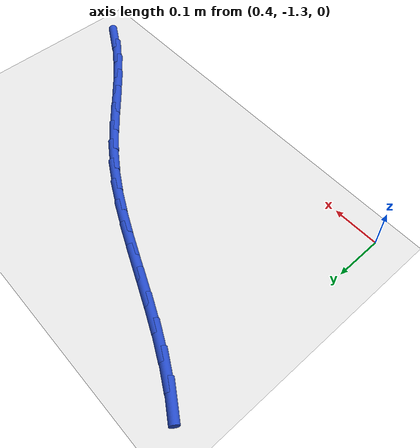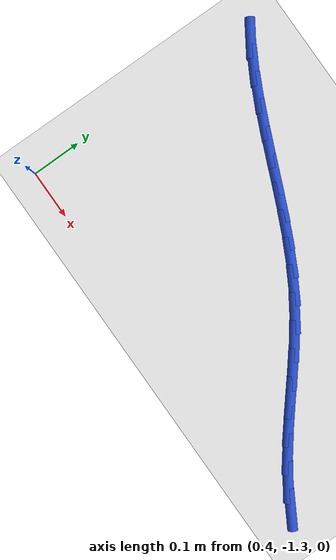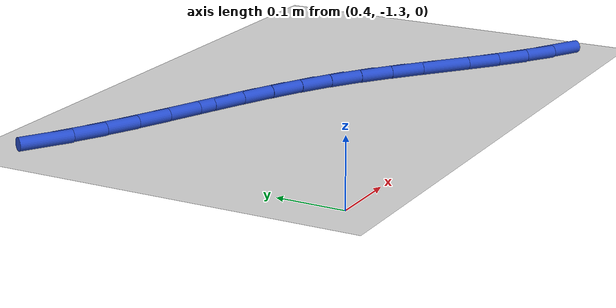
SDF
<sdf version="1.6">
 <world name="default">
  <model name="ground_plane">
   <static>1</static>
   <link name="link">
    <collision name="collision">
     <geometry><plane><normal>0 0 1</normal><size>100 100</size></plane></geometry>
     <surface><friction><ode><mu>100</mu><mu2>50</mu2></ode></friction></surface>
    </collision>
    <visual name="visual">
     <cast_shadows>0</cast_shadows>
     <geometry><plane><normal>0 0 1</normal><size>100 100</size></plane></geometry>
     <material>
      <script><uri>file://media/materials/scripts/gazebo.material</uri><name>Gazebo/WhiteGlow</name></script>
     </material>
    </visual>
   </link>
  </model>
  <model name="line">
   <link name="link_105">
    <pose>1.2019997121312904 -1.2704965448211438 0.01 0 1.57 -0.52057335708892</pose>
    <collision name="collision">
     <geometry><cylinder><radius>0.01</radius><length>0.08</length></cylinder></geometry>
    </collision>
    <visual name="visual">
     <material>
      <script><name>Gazebo/Blue</name><uri>file://media/materials/scripts/gazebo.material</uri></script>
     </material>
     <geometry><cylinder><radius>0.01</radius><length>0.08</length></cylinder></geometry>
    </visual>
   </link>
   <link name="link_106">
    <pose>1.156565427537016 -1.2444480063284054 0.01 0 1.57 -0.5995848412387178</pose>
    <collision name="collision">
     <geometry><cylinder><radius>0.01</radius><length>0.08</length></cylinder></geometry>
    </collision>
    <visual name="visual">
     <material>
      <script><name>Gazebo/Blue</name><uri>file://media/materials/scripts/gazebo.material</uri></script>
     </material>
     <geometry><cylinder><radius>0.01</radius><length>0.08</length></cylinder></geometry>
    </visual>
   </link>
   <link name="link_107">
    <pose>1.1131077206313988 -1.2147434681204823 0.01 0 1.57 -0.6539050554908377</pose>
    <collision name="collision">
     <geometry><cylinder><radius>0.01</radius><length>0.08</length></cylinder></geometry>
    </collision>
    <visual name="visual">
     <material>
      <script><name>Gazebo/Blue</name><uri>file://media/materials/scripts/gazebo.material</uri></script>
     </material>
     <geometry><cylinder><radius>0.01</radius><length>0.08</length></cylinder></geometry>
    </visual>
   </link>
   <link name="link_108">
    <pose>1.0710075862126358 -1.1824785731781344 0.01 0 1.57 -0.6841100821953404</pose>
    <collision name="collision">
     <geometry><cylinder><radius>0.01</radius><length>0.08</length></cylinder></geometry>
    </collision>
    <visual name="visual">
     <material>
      <script><name>Gazebo/Blue</name><uri>file://media/materials/scripts/gazebo.material</uri></script>
     </material>
     <geometry><cylinder><radius>0.01</radius><length>0.08</length></cylinder></geometry>
    </visual>
   </link>
   <link name="link_109">
    <pose>1.0296460190789263 -1.1487489644821214 0.01 0 1.57 -0.6908671000824239</pose>
    <collision name="collision">
     <geometry><cylinder><radius>0.01</radius><length>0.08</length></cylinder></geometry>
    </collision>
    <visual name="visual">
     <material>
      <script><name>Gazebo/Blue</name><uri>file://media/materials/scripts/gazebo.material</uri></script>
     </material>
     <geometry><cylinder><radius>0.01</radius><length>0.08</length></cylinder></geometry>
    </visual>
   </link>
   <link name="link_110">
    <pose>0.98840401402847 -1.114650285013205 0.01 0 1.57 -0.6744333510508359</pose>
    <collision name="collision">
     <geometry><cylinder><radius>0.01</radius><length>0.08</length></cylinder></geometry>
    </collision>
    <visual name="visual">
     <material>
      <script><name>Gazebo/Blue</name><uri>file://media/materials/scripts/gazebo.material</uri></script>
     </material>
     <geometry><cylinder><radius>0.01</radius><length>0.08</length></cylinder></geometry>
    </visual>
   </link>
   <link name="link_111">
    <pose>0.9466625658594646 -1.0812781777521445 0.01 0 1.57 -0.634556524993934</pose>
    <collision name="collision">
     <geometry><cylinder><radius>0.01</radius><length>0.08</length></cylinder></geometry>
    </collision>
    <visual name="visual">
     <material>
      <script><name>Gazebo/Blue</name><uri>file://media/materials/scripts/gazebo.material</uri></script>
     </material>
     <geometry><cylinder><radius>0.01</radius><length>0.08</length></cylinder></geometry>
    </visual>
   </link>
   <link name="link_112">
    <pose>0.9038026693701088 -1.0497282856797008 0.01 0 1.57 -0.5727105307852239</pose>
    <collision name="collision">
     <geometry><cylinder><radius>0.01</radius><length>0.08</length></cylinder></geometry>
    </collision>
    <visual name="visual">
     <material>
      <script><name>Gazebo/Blue</name><uri>file://media/materials/scripts/gazebo.material</uri></script>
     </material>
     <geometry><cylinder><radius>0.01</radius><length>0.08</length></cylinder></geometry>
    </visual>
   </link>
   <link name="link_113">
    <pose>0.8592578449658915 -1.0210058121393246 0.01 0 1.57 -0.510613217019984</pose>
    <collision name="collision">
     <geometry><cylinder><radius>0.01</radius><length>0.08</length></cylinder></geometry>
    </collision>
    <visual name="visual">
     <material>
      <script><name>Gazebo/Blue</name><uri>file://media/materials/scripts/gazebo.material</uri></script>
     </material>
     <geometry><cylinder><radius>0.01</radius><length>0.08</length></cylinder></geometry>
    </visual>
   </link>
   <link name="link_114">
    <pose>0.8130416855841662 -0.9951171800300308 0.01 0 1.57 -0.4621612666349634</pose>
    <collision name="collision">
     <geometry><cylinder><radius>0.01</radius><length>0.08</length></cylinder></geometry>
    </collision>
    <visual name="visual">
     <material>
      <script><name>Gazebo/Blue</name><uri>file://media/materials/scripts/gazebo.material</uri></script>
     </material>
     <geometry><cylinder><radius>0.01</radius><length>0.08</length></cylinder></geometry>
    </visual>
   </link>
   <link name="link_115">
    <pose>0.7655280165282001 -0.9714485569848682 0.01 0 1.57 -0.42760638137626794</pose>
    <collision name="collision">
     <geometry><cylinder><radius>0.01</radius><length>0.08</length></cylinder></geometry>
    </collision>
    <visual name="visual">
     <material>
      <script><name>Gazebo/Blue</name><uri>file://media/materials/scripts/gazebo.material</uri></script>
     </material>
     <geometry><cylinder><radius>0.01</radius><length>0.08</length></cylinder></geometry>
    </visual>
   </link>
   <link name="link_116">
    <pose>0.7170960678806791 -0.9493768045799833 0.01 0 1.57 -0.40679565961683595</pose>
    <collision name="collision">
     <geometry><cylinder><radius>0.01</radius><length>0.08</length></cylinder></geometry>
    </collision>
    <visual name="visual">
     <material>
      <script><name>Gazebo/Blue</name><uri>file://media/materials/scripts/gazebo.material</uri></script>
     </material>
     <geometry><cylinder><radius>0.01</radius><length>0.08</length></cylinder></geometry>
    </visual>
   </link>
   <link name="link_117">
    <pose>0.6681250697242875 -0.928278784391522 0.01 0 1.57 -0.39957255685179305</pose>
    <collision name="collision">
     <geometry><cylinder><radius>0.01</radius><length>0.08</length></cylinder></geometry>
    </collision>
    <visual name="visual">
     <material>
      <script><name>Gazebo/Blue</name><uri>file://media/materials/scripts/gazebo.material</uri></script>
     </material>
     <geometry><cylinder><radius>0.01</radius><length>0.08</length></cylinder></geometry>
    </visual>
   </link>
   <link name="link_118">
    <pose>0.6189942521417121 -0.9075313579956319 0.01 0 1.57 -0.40589212299389404</pose>
    <collision name="collision">
     <geometry><cylinder><radius>0.01</radius><length>0.08</length></cylinder></geometry>
    </collision>
    <visual name="visual">
     <material>
      <script><name>Gazebo/Blue</name><uri>file://media/materials/scripts/gazebo.material</uri></script>
     </material>
     <geometry><cylinder><radius>0.01</radius><length>0.08</length></cylinder></geometry>
    </visual>
   </link>
   <link name="link_119">
    <pose>0.5700828452156382 -0.8865113869684592 0.01 0 1.57 -0.42586053276547525</pose>
    <collision name="collision">
     <geometry><cylinder><radius>0.01</radius><length>0.08</length></cylinder></geometry>
    </collision>
    <visual name="visual">
     <material>
      <script><name>Gazebo/Blue</name><uri>file://media/materials/scripts/gazebo.material</uri></script>
     </material>
     <geometry><cylinder><radius>0.01</radius><length>0.08</length></cylinder></geometry>
    </visual>
   </link>
   <link name="link_120">
    <pose>0.5217700790287508 -0.8645957328861503 0.01 0 1.57 -0.4597024354717925</pose>
    <collision name="collision">
     <geometry><cylinder><radius>0.01</radius><length>0.08</length></cylinder></geometry>
    </collision>
    <visual name="visual">
     <material>
      <script><name>Gazebo/Blue</name><uri>file://media/materials/scripts/gazebo.material</uri></script>
     </material>
     <geometry><cylinder><radius>0.01</radius><length>0.08</length></cylinder></geometry>
    </visual>
   </link>
   <link name="link_121">
    <pose>0.47443518366373544 -0.8411612573248519 0.01 0 1.57 -0.5076503903030862</pose>
    <collision name="collision">
     <geometry><cylinder><radius>0.01</radius><length>0.08</length></cylinder></geometry>
    </collision>
    <visual name="visual">
     <material>
      <script><name>Gazebo/Blue</name><uri>file://media/materials/scripts/gazebo.material</uri></script>
     </material>
     <geometry><cylinder><radius>0.01</radius><length>0.08</length></cylinder></geometry>
    </visual>
   </link>
   <link name="link_122">
    <pose>0.42845738920327714 -0.8155848218607106 0.01 0 1.57 -0.569745976396848</pose>
    <collision name="collision">
     <geometry><cylinder><radius>0.01</radius><length>0.08</length></cylinder></geometry>
    </collision>
    <visual name="visual">
     <material>
      <script><name>Gazebo/Blue</name><uri>file://media/materials/scripts/gazebo.material</uri></script>
     </material>
     <geometry><cylinder><radius>0.01</radius><length>0.08</length></cylinder></geometry>
    </visual>
   </link>
  </model>
 </world>
</sdf>
